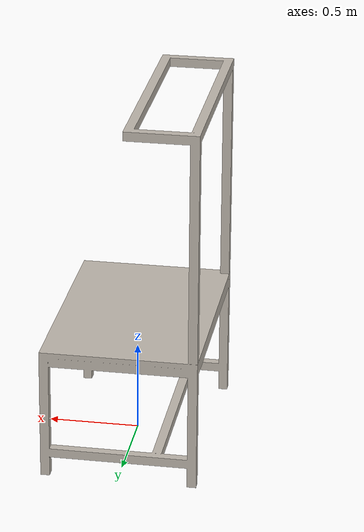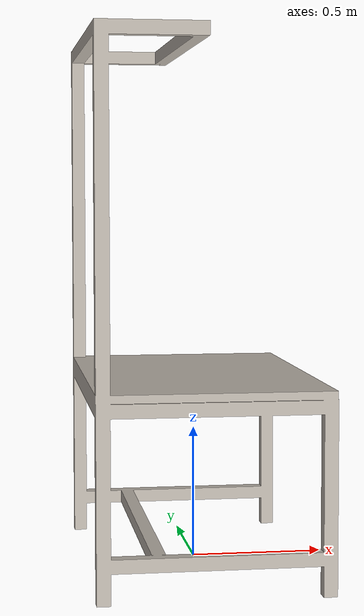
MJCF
<mujoco model="Handarbeitsplatz">
  <default>
    <default class="visual">
      <geom group="2" type="mesh" contype="0" conaffinity="0"/>
    </default>
    <default class="collision">
      <geom group="3" type="mesh"/>
    </default>
  </default>
  <asset>
    <texture type="2d" name="Texture" file="Texture.png"/>
    <material name="Texture_Material" texture="Texture" specular="0.5" shininess="0.009803922"/>
    <mesh file="Handarbeitsplatz.obj"/>
  </asset>
  <worldbody>
    <body name="Handarbeitsplatz">
      <geom material="Texture_Material" mesh="Handarbeitsplatz" class="visual"/>
      <geom type="box" size="0.4 0.6 0.72" class="collision"/>
    </body>
  </worldbody>
</mujoco>
